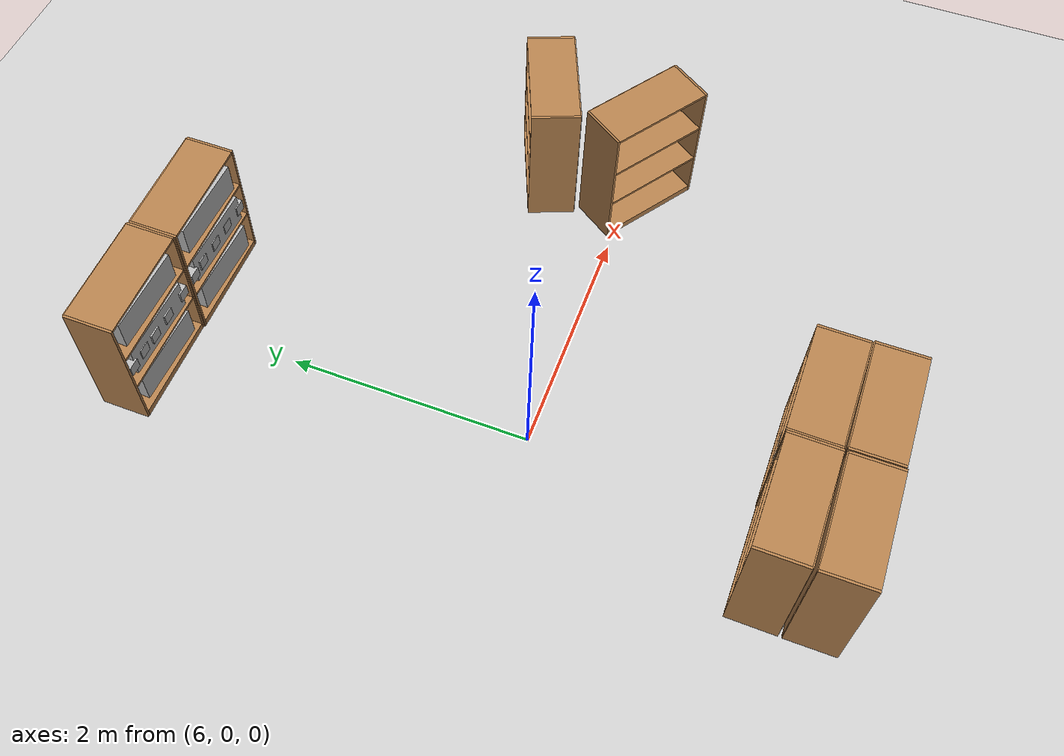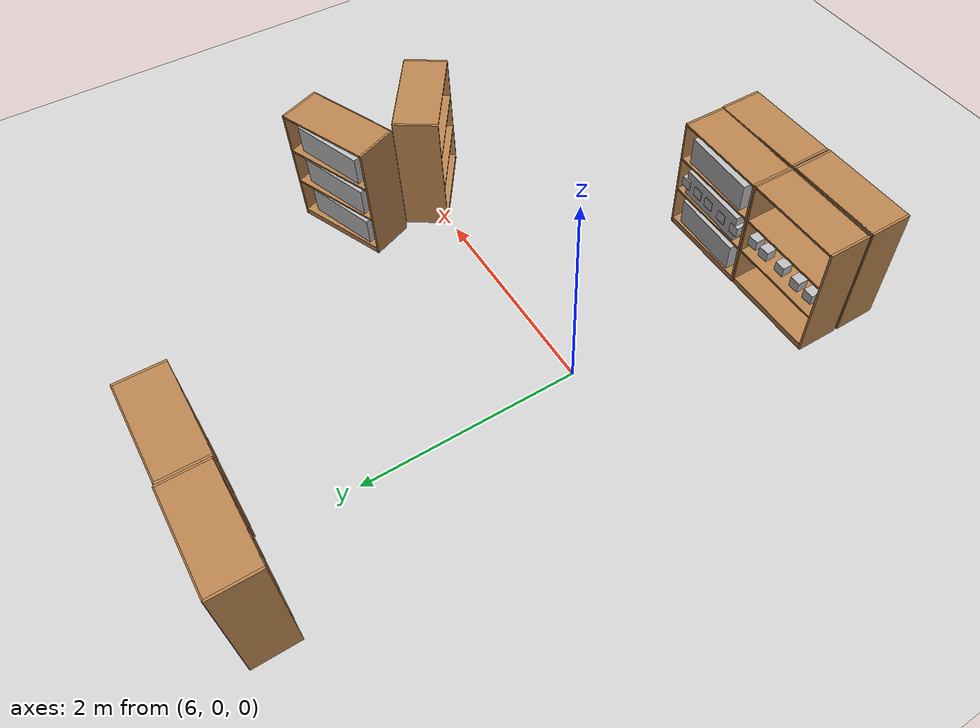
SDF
<sdf version="1.7">
 <world name="default">
  <model name="ground_plane">
   <static>1</static>
   <link name="link">
    <collision name="collision">
     <geometry><plane><normal>0 0 1</normal><size>100 100</size></plane></geometry>
     <surface><friction><ode><mu>100</mu><mu2>50</mu2></ode></friction></surface>
    </collision>
    <visual name="visual">
     <cast_shadows>0</cast_shadows>
     <geometry><plane><normal>0 0 1</normal><size>100 100</size></plane></geometry>
     <material>
      <script><uri>file://media/materials/scripts/gazebo.material</uri><name>Gazebo/Grey</name></script>
     </material>
    </visual>
   </link>
  </model>
  <model name="bookshelf">
   <static>1</static>
   <link name="link">
    <inertial><mass>1</mass></inertial>
    <collision name="back">
     <pose>0 0.005 0.6 0 -0 0</pose>
     <geometry><box><size>0.9 0.01 1.2</size></box></geometry>
    </collision>
    <visual name="visual1">
     <pose>0 0.005 0.6 0 -0 0</pose>
     <geometry><box><size>0.9 0.01 1.2</size></box></geometry>
     <material>
      <script><uri>file://media/materials/scripts/gazebo.material</uri><name>Gazebo/Wood</name></script>
     </material>
    </visual>
    <collision name="left_side">
     <pose>0.45 -0.195 0.6 0 -0 0</pose>
     <geometry><box><size>0.02 0.4 1.2</size></box></geometry>
    </collision>
    <visual name="visual2">
     <pose>0.45 -0.195 0.6 0 -0 0</pose>
     <geometry><box><size>0.02 0.4 1.2</size></box></geometry>
     <material>
      <script><uri>file://media/materials/scripts/gazebo.material</uri><name>Gazebo/Wood</name></script>
     </material>
    </visual>
    <collision name="right_side">
     <pose>-0.45 -0.195 0.6 0 -0 0</pose>
     <geometry><box><size>0.02 0.4 1.2</size></box></geometry>
    </collision>
    <visual name="visual3">
     <pose>-0.45 -0.195 0.6 0 -0 0</pose>
     <geometry><box><size>0.02 0.4 1.2</size></box></geometry>
     <material>
      <script><uri>file://media/materials/scripts/gazebo.material</uri><name>Gazebo/Wood</name></script>
     </material>
    </visual>
    <collision name="bottom">
     <pose>0 -0.195 0.03 0 -0 0</pose>
     <geometry><box><size>0.88 0.4 0.06</size></box></geometry>
    </collision>
    <visual name="visual4">
     <pose>0 -0.195 0.03 0 -0 0</pose>
     <geometry><box><size>0.88 0.4 0.06</size></box></geometry>
     <material>
      <script><uri>file://media/materials/scripts/gazebo.material</uri><name>Gazebo/Wood</name></script>
     </material>
    </visual>
    <collision name="top">
     <pose>0 -0.195 1.19 0 -0 0</pose>
     <geometry><box><size>0.88 0.4 0.02</size></box></geometry>
    </collision>
    <visual name="visual5">
     <pose>0 -0.195 1.19 0 -0 0</pose>
     <geometry><box><size>0.88 0.4 0.02</size></box></geometry>
     <material>
      <script><uri>file://media/materials/scripts/gazebo.material</uri><name>Gazebo/Wood</name></script>
     </material>
    </visual>
    <collision name="low_shelf">
     <pose>0 -0.195 0.43 0 -0 0</pose>
     <geometry><box><size>0.88 0.4 0.02</size></box></geometry>
    </collision>
    <visual name="visual6">
     <pose>0 -0.195 0.43 0 -0 0</pose>
     <geometry><box><size>0.88 0.4 0.02</size></box></geometry>
     <material>
      <script><uri>file://media/materials/scripts/gazebo.material</uri><name>Gazebo/Wood</name></script>
     </material>
    </visual>
    <collision name="high_shelf">
     <pose>0 -0.195 0.8 0 -0 0</pose>
     <geometry><box><size>0.88 0.4 0.02</size></box></geometry>
    </collision>
    <visual name="visual7">
     <pose>0 -0.195 0.8 0 -0 0</pose>
     <geometry><box><size>0.88 0.4 0.02</size></box></geometry>
     <material>
      <script><uri>file://media/materials/scripts/gazebo.material</uri><name>Gazebo/Wood</name></script>
     </material>
    </visual>
   </link>
   <pose>6.50028 3.23644 0.012624 0 -0 0</pose>
  </model>
  <model name="bookshelf_clone">
   <static>1</static>
   <link name="link">
    <inertial><mass>1</mass></inertial>
    <collision name="back">
     <pose>0 0.005 0.6 0 -0 0</pose>
     <geometry><box><size>0.9 0.01 1.2</size></box></geometry>
    </collision>
    <visual name="visual1">
     <pose>0 0.005 0.6 0 -0 0</pose>
     <geometry><box><size>0.9 0.01 1.2</size></box></geometry>
     <material>
      <script><uri>file://media/materials/scripts/gazebo.material</uri><name>Gazebo/Wood</name></script>
     </material>
    </visual>
    <collision name="left_side">
     <pose>0.45 -0.195 0.6 0 -0 0</pose>
     <geometry><box><size>0.02 0.4 1.2</size></box></geometry>
    </collision>
    <visual name="visual2">
     <pose>0.45 -0.195 0.6 0 -0 0</pose>
     <geometry><box><size>0.02 0.4 1.2</size></box></geometry>
     <material>
      <script><uri>file://media/materials/scripts/gazebo.material</uri><name>Gazebo/Wood</name></script>
     </material>
    </visual>
    <collision name="right_side">
     <pose>-0.45 -0.195 0.6 0 -0 0</pose>
     <geometry><box><size>0.02 0.4 1.2</size></box></geometry>
    </collision>
    <visual name="visual3">
     <pose>-0.45 -0.195 0.6 0 -0 0</pose>
     <geometry><box><size>0.02 0.4 1.2</size></box></geometry>
     <material>
      <script><uri>file://media/materials/scripts/gazebo.material</uri><name>Gazebo/Wood</name></script>
     </material>
    </visual>
    <collision name="bottom">
     <pose>0 -0.195 0.03 0 -0 0</pose>
     <geometry><box><size>0.88 0.4 0.06</size></box></geometry>
    </collision>
    <visual name="visual4">
     <pose>0 -0.195 0.03 0 -0 0</pose>
     <geometry><box><size>0.88 0.4 0.06</size></box></geometry>
     <material>
      <script><uri>file://media/materials/scripts/gazebo.material</uri><name>Gazebo/Wood</name></script>
     </material>
    </visual>
    <collision name="top">
     <pose>0 -0.195 1.19 0 -0 0</pose>
     <geometry><box><size>0.88 0.4 0.02</size></box></geometry>
    </collision>
    <visual name="visual5">
     <pose>0 -0.195 1.19 0 -0 0</pose>
     <geometry><box><size>0.88 0.4 0.02</size></box></geometry>
     <material>
      <script><uri>file://media/materials/scripts/gazebo.material</uri><name>Gazebo/Wood</name></script>
     </material>
    </visual>
    <collision name="low_shelf">
     <pose>0 -0.195 0.43 0 -0 0</pose>
     <geometry><box><size>0.88 0.4 0.02</size></box></geometry>
    </collision>
    <visual name="visual6">
     <pose>0 -0.195 0.43 0 -0 0</pose>
     <geometry><box><size>0.88 0.4 0.02</size></box></geometry>
     <material>
      <script><uri>file://media/materials/scripts/gazebo.material</uri><name>Gazebo/Wood</name></script>
     </material>
    </visual>
    <collision name="high_shelf">
     <pose>0 -0.195 0.8 0 -0 0</pose>
     <geometry><box><size>0.88 0.4 0.02</size></box></geometry>
    </collision>
    <visual name="visual7">
     <pose>0 -0.195 0.8 0 -0 0</pose>
     <geometry><box><size>0.88 0.4 0.02</size></box></geometry>
     <material>
      <script><uri>file://media/materials/scripts/gazebo.material</uri><name>Gazebo/Wood</name></script>
     </material>
    </visual>
   </link>
   <pose>5.58313 3.24733 0.012624 0 -0 0</pose>
  </model>
  <model name="bookshelf_clone_0_clone_1_clone">
   <static>1</static>
   <link name="link">
    <inertial><mass>1</mass></inertial>
    <collision name="back">
     <pose>0 0.005 0.6 0 -0 0</pose>
     <geometry><box><size>0.9 0.01 1.2</size></box></geometry>
    </collision>
    <visual name="visual1">
     <pose>0 0.005 0.6 0 -0 0</pose>
     <geometry><box><size>0.9 0.01 1.2</size></box></geometry>
     <material>
      <script><uri>file://media/materials/scripts/gazebo.material</uri><name>Gazebo/Wood</name></script>
     </material>
    </visual>
    <collision name="left_side">
     <pose>0.45 -0.195 0.6 0 -0 0</pose>
     <geometry><box><size>0.02 0.4 1.2</size></box></geometry>
    </collision>
    <visual name="visual2">
     <pose>0.45 -0.195 0.6 0 -0 0</pose>
     <geometry><box><size>0.02 0.4 1.2</size></box></geometry>
     <material>
      <script><uri>file://media/materials/scripts/gazebo.material</uri><name>Gazebo/Wood</name></script>
     </material>
    </visual>
    <collision name="right_side">
     <pose>-0.45 -0.195 0.6 0 -0 0</pose>
     <geometry><box><size>0.02 0.4 1.2</size></box></geometry>
    </collision>
    <visual name="visual3">
     <pose>-0.45 -0.195 0.6 0 -0 0</pose>
     <geometry><box><size>0.02 0.4 1.2</size></box></geometry>
     <material>
      <script><uri>file://media/materials/scripts/gazebo.material</uri><name>Gazebo/Wood</name></script>
     </material>
    </visual>
    <collision name="bottom">
     <pose>0 -0.195 0.03 0 -0 0</pose>
     <geometry><box><size>0.88 0.4 0.06</size></box></geometry>
    </collision>
    <visual name="visual4">
     <pose>0 -0.195 0.03 0 -0 0</pose>
     <geometry><box><size>0.88 0.4 0.06</size></box></geometry>
     <material>
      <script><uri>file://media/materials/scripts/gazebo.material</uri><name>Gazebo/Wood</name></script>
     </material>
    </visual>
    <collision name="top">
     <pose>0 -0.195 1.19 0 -0 0</pose>
     <geometry><box><size>0.88 0.4 0.02</size></box></geometry>
    </collision>
    <visual name="visual5">
     <pose>0 -0.195 1.19 0 -0 0</pose>
     <geometry><box><size>0.88 0.4 0.02</size></box></geometry>
     <material>
      <script><uri>file://media/materials/scripts/gazebo.material</uri><name>Gazebo/Wood</name></script>
     </material>
    </visual>
    <collision name="low_shelf">
     <pose>0 -0.195 0.43 0 -0 0</pose>
     <geometry><box><size>0.88 0.4 0.02</size></box></geometry>
    </collision>
    <visual name="visual6">
     <pose>0 -0.195 0.43 0 -0 0</pose>
     <geometry><box><size>0.88 0.4 0.02</size></box></geometry>
     <material>
      <script><uri>file://media/materials/scripts/gazebo.material</uri><name>Gazebo/Wood</name></script>
     </material>
    </visual>
    <collision name="high_shelf">
     <pose>0 -0.195 0.8 0 -0 0</pose>
     <geometry><box><size>0.88 0.4 0.02</size></box></geometry>
    </collision>
    <visual name="visual7">
     <pose>0 -0.195 0.8 0 -0 0</pose>
     <geometry><box><size>0.88 0.4 0.02</size></box></geometry>
     <material>
      <script><uri>file://media/materials/scripts/gazebo.material</uri><name>Gazebo/Wood</name></script>
     </material>
    </visual>
   </link>
   <pose>5.60363 -2.22371 0.012624 0 -0 0</pose>
  </model>
  <model name="bookshelf_clone_0_clone_1_clone_0">
   <static>1</static>
   <link name="link">
    <inertial><mass>1</mass></inertial>
    <collision name="back">
     <pose>0 0.005 0.6 0 -0 0</pose>
     <geometry><box><size>0.9 0.01 1.2</size></box></geometry>
    </collision>
    <visual name="visual1">
     <pose>0 0.005 0.6 0 -0 0</pose>
     <geometry><box><size>0.9 0.01 1.2</size></box></geometry>
     <material>
      <script><uri>file://media/materials/scripts/gazebo.material</uri><name>Gazebo/Wood</name></script>
     </material>
    </visual>
    <collision name="left_side">
     <pose>0.45 -0.195 0.6 0 -0 0</pose>
     <geometry><box><size>0.02 0.4 1.2</size></box></geometry>
    </collision>
    <visual name="visual2">
     <pose>0.45 -0.195 0.6 0 -0 0</pose>
     <geometry><box><size>0.02 0.4 1.2</size></box></geometry>
     <material>
      <script><uri>file://media/materials/scripts/gazebo.material</uri><name>Gazebo/Wood</name></script>
     </material>
    </visual>
    <collision name="right_side">
     <pose>-0.45 -0.195 0.6 0 -0 0</pose>
     <geometry><box><size>0.02 0.4 1.2</size></box></geometry>
    </collision>
    <visual name="visual3">
     <pose>-0.45 -0.195 0.6 0 -0 0</pose>
     <geometry><box><size>0.02 0.4 1.2</size></box></geometry>
     <material>
      <script><uri>file://media/materials/scripts/gazebo.material</uri><name>Gazebo/Wood</name></script>
     </material>
    </visual>
    <collision name="bottom">
     <pose>0 -0.195 0.03 0 -0 0</pose>
     <geometry><box><size>0.88 0.4 0.06</size></box></geometry>
    </collision>
    <visual name="visual4">
     <pose>0 -0.195 0.03 0 -0 0</pose>
     <geometry><box><size>0.88 0.4 0.06</size></box></geometry>
     <material>
      <script><uri>file://media/materials/scripts/gazebo.material</uri><name>Gazebo/Wood</name></script>
     </material>
    </visual>
    <collision name="top">
     <pose>0 -0.195 1.19 0 -0 0</pose>
     <geometry><box><size>0.88 0.4 0.02</size></box></geometry>
    </collision>
    <visual name="visual5">
     <pose>0 -0.195 1.19 0 -0 0</pose>
     <geometry><box><size>0.88 0.4 0.02</size></box></geometry>
     <material>
      <script><uri>file://media/materials/scripts/gazebo.material</uri><name>Gazebo/Wood</name></script>
     </material>
    </visual>
    <collision name="low_shelf">
     <pose>0 -0.195 0.43 0 -0 0</pose>
     <geometry><box><size>0.88 0.4 0.02</size></box></geometry>
    </collision>
    <visual name="visual6">
     <pose>0 -0.195 0.43 0 -0 0</pose>
     <geometry><box><size>0.88 0.4 0.02</size></box></geometry>
     <material>
      <script><uri>file://media/materials/scripts/gazebo.material</uri><name>Gazebo/Wood</name></script>
     </material>
    </visual>
    <collision name="high_shelf">
     <pose>0 -0.195 0.8 0 -0 0</pose>
     <geometry><box><size>0.88 0.4 0.02</size></box></geometry>
    </collision>
    <visual name="visual7">
     <pose>0 -0.195 0.8 0 -0 0</pose>
     <geometry><box><size>0.88 0.4 0.02</size></box></geometry>
     <material>
      <script><uri>file://media/materials/scripts/gazebo.material</uri><name>Gazebo/Wood</name></script>
     </material>
    </visual>
   </link>
   <pose>6.53127 -2.2171 0.012624 0 -0 0</pose>
  </model>
  <model name="bookshelf_clone_clone_clone_1_clone_0_clone">
   <static>1</static>
   <link name="link">
    <inertial><mass>1</mass></inertial>
    <collision name="back">
     <pose>0 0.005 0.6 0 -0 0</pose>
     <geometry><box><size>0.9 0.01 1.2</size></box></geometry>
    </collision>
    <visual name="visual1">
     <pose>0 0.005 0.6 0 -0 0</pose>
     <geometry><box><size>0.9 0.01 1.2</size></box></geometry>
     <material>
      <script><uri>file://media/materials/scripts/gazebo.material</uri><name>Gazebo/Wood</name></script>
     </material>
    </visual>
    <collision name="left_side">
     <pose>0.45 -0.195 0.6 0 -0 0</pose>
     <geometry><box><size>0.02 0.4 1.2</size></box></geometry>
    </collision>
    <visual name="visual2">
     <pose>0.45 -0.195 0.6 0 -0 0</pose>
     <geometry><box><size>0.02 0.4 1.2</size></box></geometry>
     <material>
      <script><uri>file://media/materials/scripts/gazebo.material</uri><name>Gazebo/Wood</name></script>
     </material>
    </visual>
    <collision name="right_side">
     <pose>-0.45 -0.195 0.6 0 -0 0</pose>
     <geometry><box><size>0.02 0.4 1.2</size></box></geometry>
    </collision>
    <visual name="visual3">
     <pose>-0.45 -0.195 0.6 0 -0 0</pose>
     <geometry><box><size>0.02 0.4 1.2</size></box></geometry>
     <material>
      <script><uri>file://media/materials/scripts/gazebo.material</uri><name>Gazebo/Wood</name></script>
     </material>
    </visual>
    <collision name="bottom">
     <pose>0 -0.195 0.03 0 -0 0</pose>
     <geometry><box><size>0.88 0.4 0.06</size></box></geometry>
    </collision>
    <visual name="visual4">
     <pose>0 -0.195 0.03 0 -0 0</pose>
     <geometry><box><size>0.88 0.4 0.06</size></box></geometry>
     <material>
      <script><uri>file://media/materials/scripts/gazebo.material</uri><name>Gazebo/Wood</name></script>
     </material>
    </visual>
    <collision name="top">
     <pose>0 -0.195 1.19 0 -0 0</pose>
     <geometry><box><size>0.88 0.4 0.02</size></box></geometry>
    </collision>
    <visual name="visual5">
     <pose>0 -0.195 1.19 0 -0 0</pose>
     <geometry><box><size>0.88 0.4 0.02</size></box></geometry>
     <material>
      <script><uri>file://media/materials/scripts/gazebo.material</uri><name>Gazebo/Wood</name></script>
     </material>
    </visual>
    <collision name="low_shelf">
     <pose>0 -0.195 0.43 0 -0 0</pose>
     <geometry><box><size>0.88 0.4 0.02</size></box></geometry>
    </collision>
    <visual name="visual6">
     <pose>0 -0.195 0.43 0 -0 0</pose>
     <geometry><box><size>0.88 0.4 0.02</size></box></geometry>
     <material>
      <script><uri>file://media/materials/scripts/gazebo.material</uri><name>Gazebo/Wood</name></script>
     </material>
    </visual>
    <collision name="high_shelf">
     <pose>0 -0.195 0.8 0 -0 0</pose>
     <geometry><box><size>0.88 0.4 0.02</size></box></geometry>
    </collision>
    <visual name="visual7">
     <pose>0 -0.195 0.8 0 -0 0</pose>
     <geometry><box><size>0.88 0.4 0.02</size></box></geometry>
     <material>
      <script><uri>file://media/materials/scripts/gazebo.material</uri><name>Gazebo/Wood</name></script>
     </material>
    </visual>
   </link>
   <pose>5.60608 -2.18659 0.012624 0 -0 3.13078</pose>
  </model>
  <model name="bookshelf_clone_clone_clone_1_clone_0_clone_0">
   <static>1</static>
   <link name="link">
    <inertial><mass>1</mass></inertial>
    <collision name="back">
     <pose>0 0.005 0.6 0 -0 0</pose>
     <geometry><box><size>0.9 0.01 1.2</size></box></geometry>
    </collision>
    <visual name="visual1">
     <pose>0 0.005 0.6 0 -0 0</pose>
     <geometry><box><size>0.9 0.01 1.2</size></box></geometry>
     <material>
      <script><uri>file://media/materials/scripts/gazebo.material</uri><name>Gazebo/Wood</name></script>
     </material>
    </visual>
    <collision name="left_side">
     <pose>0.45 -0.195 0.6 0 -0 0</pose>
     <geometry><box><size>0.02 0.4 1.2</size></box></geometry>
    </collision>
    <visual name="visual2">
     <pose>0.45 -0.195 0.6 0 -0 0</pose>
     <geometry><box><size>0.02 0.4 1.2</size></box></geometry>
     <material>
      <script><uri>file://media/materials/scripts/gazebo.material</uri><name>Gazebo/Wood</name></script>
     </material>
    </visual>
    <collision name="right_side">
     <pose>-0.45 -0.195 0.6 0 -0 0</pose>
     <geometry><box><size>0.02 0.4 1.2</size></box></geometry>
    </collision>
    <visual name="visual3">
     <pose>-0.45 -0.195 0.6 0 -0 0</pose>
     <geometry><box><size>0.02 0.4 1.2</size></box></geometry>
     <material>
      <script><uri>file://media/materials/scripts/gazebo.material</uri><name>Gazebo/Wood</name></script>
     </material>
    </visual>
    <collision name="bottom">
     <pose>0 -0.195 0.03 0 -0 0</pose>
     <geometry><box><size>0.88 0.4 0.06</size></box></geometry>
    </collision>
    <visual name="visual4">
     <pose>0 -0.195 0.03 0 -0 0</pose>
     <geometry><box><size>0.88 0.4 0.06</size></box></geometry>
     <material>
      <script><uri>file://media/materials/scripts/gazebo.material</uri><name>Gazebo/Wood</name></script>
     </material>
    </visual>
    <collision name="top">
     <pose>0 -0.195 1.19 0 -0 0</pose>
     <geometry><box><size>0.88 0.4 0.02</size></box></geometry>
    </collision>
    <visual name="visual5">
     <pose>0 -0.195 1.19 0 -0 0</pose>
     <geometry><box><size>0.88 0.4 0.02</size></box></geometry>
     <material>
      <script><uri>file://media/materials/scripts/gazebo.material</uri><name>Gazebo/Wood</name></script>
     </material>
    </visual>
    <collision name="low_shelf">
     <pose>0 -0.195 0.43 0 -0 0</pose>
     <geometry><box><size>0.88 0.4 0.02</size></box></geometry>
    </collision>
    <visual name="visual6">
     <pose>0 -0.195 0.43 0 -0 0</pose>
     <geometry><box><size>0.88 0.4 0.02</size></box></geometry>
     <material>
      <script><uri>file://media/materials/scripts/gazebo.material</uri><name>Gazebo/Wood</name></script>
     </material>
    </visual>
    <collision name="high_shelf">
     <pose>0 -0.195 0.8 0 -0 0</pose>
     <geometry><box><size>0.88 0.4 0.02</size></box></geometry>
    </collision>
    <visual name="visual7">
     <pose>0 -0.195 0.8 0 -0 0</pose>
     <geometry><box><size>0.88 0.4 0.02</size></box></geometry>
     <material>
      <script><uri>file://media/materials/scripts/gazebo.material</uri><name>Gazebo/Wood</name></script>
     </material>
    </visual>
   </link>
   <pose>6.52158 -2.19143 0.012624 0 -0 3.13078</pose>
  </model>
  <model name="bookshelf_clone_clone_clone_1_clone_0_clone_1_clone_clone">
   <static>1</static>
   <link name="link">
    <inertial><mass>1</mass></inertial>
    <collision name="back">
     <pose>0 0.005 0.6 0 -0 0</pose>
     <geometry><box><size>0.9 0.01 1.2</size></box></geometry>
    </collision>
    <visual name="visual1">
     <pose>0 0.005 0.6 0 -0 0</pose>
     <geometry><box><size>0.9 0.01 1.2</size></box></geometry>
     <material>
      <script><uri>file://media/materials/scripts/gazebo.material</uri><name>Gazebo/Wood</name></script>
     </material>
    </visual>
    <collision name="left_side">
     <pose>0.45 -0.195 0.6 0 -0 0</pose>
     <geometry><box><size>0.02 0.4 1.2</size></box></geometry>
    </collision>
    <visual name="visual2">
     <pose>0.45 -0.195 0.6 0 -0 0</pose>
     <geometry><box><size>0.02 0.4 1.2</size></box></geometry>
     <material>
      <script><uri>file://media/materials/scripts/gazebo.material</uri><name>Gazebo/Wood</name></script>
     </material>
    </visual>
    <collision name="right_side">
     <pose>-0.45 -0.195 0.6 0 -0 0</pose>
     <geometry><box><size>0.02 0.4 1.2</size></box></geometry>
    </collision>
    <visual name="visual3">
     <pose>-0.45 -0.195 0.6 0 -0 0</pose>
     <geometry><box><size>0.02 0.4 1.2</size></box></geometry>
     <material>
      <script><uri>file://media/materials/scripts/gazebo.material</uri><name>Gazebo/Wood</name></script>
     </material>
    </visual>
    <collision name="bottom">
     <pose>0 -0.195 0.03 0 -0 0</pose>
     <geometry><box><size>0.88 0.4 0.06</size></box></geometry>
    </collision>
    <visual name="visual4">
     <pose>0 -0.195 0.03 0 -0 0</pose>
     <geometry><box><size>0.88 0.4 0.06</size></box></geometry>
     <material>
      <script><uri>file://media/materials/scripts/gazebo.material</uri><name>Gazebo/Wood</name></script>
     </material>
    </visual>
    <collision name="top">
     <pose>0 -0.195 1.19 0 -0 0</pose>
     <geometry><box><size>0.88 0.4 0.02</size></box></geometry>
    </collision>
    <visual name="visual5">
     <pose>0 -0.195 1.19 0 -0 0</pose>
     <geometry><box><size>0.88 0.4 0.02</size></box></geometry>
     <material>
      <script><uri>file://media/materials/scripts/gazebo.material</uri><name>Gazebo/Wood</name></script>
     </material>
    </visual>
    <collision name="low_shelf">
     <pose>0 -0.195 0.43 0 -0 0</pose>
     <geometry><box><size>0.88 0.4 0.02</size></box></geometry>
    </collision>
    <visual name="visual6">
     <pose>0 -0.195 0.43 0 -0 0</pose>
     <geometry><box><size>0.88 0.4 0.02</size></box></geometry>
     <material>
      <script><uri>file://media/materials/scripts/gazebo.material</uri><name>Gazebo/Wood</name></script>
     </material>
    </visual>
    <collision name="high_shelf">
     <pose>0 -0.195 0.8 0 -0 0</pose>
     <geometry><box><size>0.88 0.4 0.02</size></box></geometry>
    </collision>
    <visual name="visual7">
     <pose>0 -0.195 0.8 0 -0 0</pose>
     <geometry><box><size>0.88 0.4 0.02</size></box></geometry>
     <material>
      <script><uri>file://media/materials/scripts/gazebo.material</uri><name>Gazebo/Wood</name></script>
     </material>
    </visual>
   </link>
   <pose>8.69753 0.106642 0.029212 0 0 -0.598378</pose>
  </model>
  <model name="bookshelf_clone_clone_clone_1_clone_0_clone_3_clone_clone">
   <static>1</static>
   <link name="link">
    <inertial><mass>1</mass></inertial>
    <collision name="back">
     <pose>0 0.005 0.6 0 -0 0</pose>
     <geometry><box><size>0.9 0.01 1.2</size></box></geometry>
    </collision>
    <visual name="visual1">
     <pose>0 0.005 0.6 0 -0 0</pose>
     <geometry><box><size>0.9 0.01 1.2</size></box></geometry>
     <material>
      <script><uri>file://media/materials/scripts/gazebo.material</uri><name>Gazebo/Wood</name></script>
     </material>
    </visual>
    <collision name="left_side">
     <pose>0.45 -0.195 0.6 0 -0 0</pose>
     <geometry><box><size>0.02 0.4 1.2</size></box></geometry>
    </collision>
    <visual name="visual2">
     <pose>0.45 -0.195 0.6 0 -0 0</pose>
     <geometry><box><size>0.02 0.4 1.2</size></box></geometry>
     <material>
      <script><uri>file://media/materials/scripts/gazebo.material</uri><name>Gazebo/Wood</name></script>
     </material>
    </visual>
    <collision name="right_side">
     <pose>-0.45 -0.195 0.6 0 -0 0</pose>
     <geometry><box><size>0.02 0.4 1.2</size></box></geometry>
    </collision>
    <visual name="visual3">
     <pose>-0.45 -0.195 0.6 0 -0 0</pose>
     <geometry><box><size>0.02 0.4 1.2</size></box></geometry>
     <material>
      <script><uri>file://media/materials/scripts/gazebo.material</uri><name>Gazebo/Wood</name></script>
     </material>
    </visual>
    <collision name="bottom">
     <pose>0 -0.195 0.03 0 -0 0</pose>
     <geometry><box><size>0.88 0.4 0.06</size></box></geometry>
    </collision>
    <visual name="visual4">
     <pose>0 -0.195 0.03 0 -0 0</pose>
     <geometry><box><size>0.88 0.4 0.06</size></box></geometry>
     <material>
      <script><uri>file://media/materials/scripts/gazebo.material</uri><name>Gazebo/Wood</name></script>
     </material>
    </visual>
    <collision name="top">
     <pose>0 -0.195 1.19 0 -0 0</pose>
     <geometry><box><size>0.88 0.4 0.02</size></box></geometry>
    </collision>
    <visual name="visual5">
     <pose>0 -0.195 1.19 0 -0 0</pose>
     <geometry><box><size>0.88 0.4 0.02</size></box></geometry>
     <material>
      <script><uri>file://media/materials/scripts/gazebo.material</uri><name>Gazebo/Wood</name></script>
     </material>
    </visual>
    <collision name="low_shelf">
     <pose>0 -0.195 0.43 0 -0 0</pose>
     <geometry><box><size>0.88 0.4 0.02</size></box></geometry>
    </collision>
    <visual name="visual6">
     <pose>0 -0.195 0.43 0 -0 0</pose>
     <geometry><box><size>0.88 0.4 0.02</size></box></geometry>
     <material>
      <script><uri>file://media/materials/scripts/gazebo.material</uri><name>Gazebo/Wood</name></script>
     </material>
    </visual>
    <collision name="high_shelf">
     <pose>0 -0.195 0.8 0 -0 0</pose>
     <geometry><box><size>0.88 0.4 0.02</size></box></geometry>
    </collision>
    <visual name="visual7">
     <pose>0 -0.195 0.8 0 -0 0</pose>
     <geometry><box><size>0.88 0.4 0.02</size></box></geometry>
     <material>
      <script><uri>file://media/materials/scripts/gazebo.material</uri><name>Gazebo/Wood</name></script>
     </material>
    </visual>
   </link>
   <pose>8.68842 0.576564 0.012624 0 0 -2.75538</pose>
  </model>
  <model name="book1.xacro_clone_0">
   <link name="base_footprint">
    <inertial>
     <pose>1 1 1.5 0 -0 0</pose>
     <mass>6</mass>
     <inertia><ixx>0.7503</ixx><ixy>0</ixy><ixz>0</ixz><iyy>0.7503</iyy><iyz>0</iyz><izz>0.003</izz></inertia>
    </inertial>
    <collision name="base_footprint_fixed_joint_lump__base_link_collision">
     <pose>1 1 1 0 -0 0</pose>
     <geometry><box><size>0.7 0.2 0.27</size></box></geometry>
    </collision>
    <collision name="base_footprint_fixed_joint_lump__book_link_2_collision_1">
     <pose>1 1 1.375 0 -0 0</pose>
     <geometry><box><size>0.7 0.2 0.27</size></box></geometry>
    </collision>
    <collision name="base_footprint_fixed_joint_lump__book_link_3_collision_2">
     <pose>1 1 1.75 0 -0 0</pose>
     <geometry><box><size>0.7 0.2 0.27</size></box></geometry>
    </collision>
    <visual name="base_footprint_fixed_joint_lump__base_link_visual">
     <pose>1 1 1 0 -0 0</pose>
     <geometry><box><size>0.7 0.2 0.27</size></box></geometry>
    </visual>
    <visual name="base_footprint_fixed_joint_lump__book_link_2_visual_1">
     <pose>1 1 1.375 0 -0 0</pose>
     <geometry><box><size>0.7 0.2 0.27</size></box></geometry>
    </visual>
    <visual name="base_footprint_fixed_joint_lump__book_link_3_visual_2">
     <pose>1 1 1.75 0 -0 0</pose>
     <geometry><box><size>0.7 0.2 0.27</size></box></geometry>
    </visual>
   </link>
   <frame name="book_joint_2" attached_to="base_link"><pose>0 0 0.375 0 -0 0</pose></frame>
   <frame name="book_link_2" attached_to="book_joint_2"/>
   <frame name="book_joint_3" attached_to="base_link"><pose>0 0 0.75 0 -0 0</pose></frame>
   <frame name="book_link_3" attached_to="book_joint_3"/>
   <frame name="base_joint" attached_to="base_footprint"><pose>1 1 1 0 -0 0</pose></frame>
   <frame name="base_link" attached_to="base_joint"/>
   <pose>4.57309 2.01917 -0.787394 0 -1.3e-05 -0.030722</pose>
  </model>
  <model name="book1.xacro_clone_1">
   <link name="base_footprint">
    <inertial>
     <pose>1 1 1.5 0 -0 0</pose>
     <mass>6</mass>
     <inertia><ixx>0.7503</ixx><ixy>0</ixy><ixz>0</ixz><iyy>0.7503</iyy><iyz>0</iyz><izz>0.003</izz></inertia>
    </inertial>
    <collision name="base_footprint_fixed_joint_lump__base_link_collision">
     <pose>1 1 1 0 -0 0</pose>
     <geometry><box><size>0.7 0.2 0.27</size></box></geometry>
    </collision>
    <collision name="base_footprint_fixed_joint_lump__book_link_2_collision_1">
     <pose>1 1 1.375 0 -0 0</pose>
     <geometry><box><size>0.7 0.2 0.27</size></box></geometry>
    </collision>
    <collision name="base_footprint_fixed_joint_lump__book_link_3_collision_2">
     <pose>1 1 1.75 0 -0 0</pose>
     <geometry><box><size>0.7 0.2 0.27</size></box></geometry>
    </collision>
    <visual name="base_footprint_fixed_joint_lump__base_link_visual">
     <pose>1 1 1 0 -0 0</pose>
     <geometry><box><size>0.7 0.2 0.27</size></box></geometry>
    </visual>
    <visual name="base_footprint_fixed_joint_lump__book_link_2_visual_1">
     <pose>1 1 1.375 0 -0 0</pose>
     <geometry><box><size>0.7 0.2 0.27</size></box></geometry>
    </visual>
    <visual name="base_footprint_fixed_joint_lump__book_link_3_visual_2">
     <pose>1 1 1.75 0 -0 0</pose>
     <geometry><box><size>0.7 0.2 0.27</size></box></geometry>
    </visual>
   </link>
   <frame name="book_joint_2" attached_to="base_link"><pose>0 0 0.375 0 -0 0</pose></frame>
   <frame name="book_link_2" attached_to="book_joint_2"/>
   <frame name="book_joint_3" attached_to="base_link"><pose>0 0 0.75 0 -0 0</pose></frame>
   <frame name="book_link_3" attached_to="book_joint_3"/>
   <frame name="base_joint" attached_to="base_footprint"><pose>1 1 1 0 -0 0</pose></frame>
   <frame name="base_link" attached_to="base_joint"/>
   <pose>5.50245 2.00171 -0.787394 0 -1.3e-05 -0.030722</pose>
  </model>
  <model name="book1.xacro_clone_7">
   <link name="base_footprint">
    <inertial>
     <pose>1 1 1.5 0 -0 0</pose>
     <mass>6</mass>
     <inertia><ixx>0.7503</ixx><ixy>0</ixy><ixz>0</ixz><iyy>0.7503</iyy><iyz>0</iyz><izz>0.003</izz></inertia>
    </inertial>
    <collision name="base_footprint_fixed_joint_lump__base_link_collision">
     <pose>1 1 1 0 -0 0</pose>
     <geometry><box><size>0.7 0.2 0.27</size></box></geometry>
    </collision>
    <collision name="base_footprint_fixed_joint_lump__book_link_2_collision_1">
     <pose>1 1 1.375 0 -0 0</pose>
     <geometry><box><size>0.7 0.2 0.27</size></box></geometry>
    </collision>
    <collision name="base_footprint_fixed_joint_lump__book_link_3_collision_2">
     <pose>1 1 1.75 0 -0 0</pose>
     <geometry><box><size>0.7 0.2 0.27</size></box></geometry>
    </collision>
    <visual name="base_footprint_fixed_joint_lump__base_link_visual">
     <pose>1 1 1 0 -0 0</pose>
     <geometry><box><size>0.7 0.2 0.27</size></box></geometry>
    </visual>
    <visual name="base_footprint_fixed_joint_lump__book_link_2_visual_1">
     <pose>1 1 1.375 0 -0 0</pose>
     <geometry><box><size>0.7 0.2 0.27</size></box></geometry>
    </visual>
    <visual name="base_footprint_fixed_joint_lump__book_link_3_visual_2">
     <pose>1 1 1.75 0 -0 0</pose>
     <geometry><box><size>0.7 0.2 0.27</size></box></geometry>
    </visual>
   </link>
   <frame name="book_joint_2" attached_to="base_link"><pose>0 0 0.375 0 -0 0</pose></frame>
   <frame name="book_link_2" attached_to="book_joint_2"/>
   <frame name="book_joint_3" attached_to="base_link"><pose>0 0 0.75 0 -0 0</pose></frame>
   <frame name="book_link_3" attached_to="book_joint_3"/>
   <frame name="base_joint" attached_to="base_footprint"><pose>1 1 1 0 -0 0</pose></frame>
   <frame name="base_link" attached_to="base_joint"/>
   <pose>5.49889 -2.88453 -0.787367 0 1.3e-05 -0.030721</pose>
  </model>
  <model name="book1.xacro_clone_0_clone_3">
   <link name="base_footprint">
    <inertial>
     <pose>1 1 1.5 0 -0 0</pose>
     <mass>6</mass>
     <inertia><ixx>0.7503</ixx><ixy>0</ixy><ixz>0</ixz><iyy>0.7503</iyy><iyz>0</iyz><izz>0.003</izz></inertia>
    </inertial>
    <collision name="base_footprint_fixed_joint_lump__base_link_collision">
     <pose>1 1 1 0 -0 0</pose>
     <geometry><box><size>0.7 0.2 0.27</size></box></geometry>
    </collision>
    <collision name="base_footprint_fixed_joint_lump__book_link_2_collision_1">
     <pose>1 1 1.375 0 -0 0</pose>
     <geometry><box><size>0.7 0.2 0.27</size></box></geometry>
    </collision>
    <collision name="base_footprint_fixed_joint_lump__book_link_3_collision_2">
     <pose>1 1 1.75 0 -0 0</pose>
     <geometry><box><size>0.7 0.2 0.27</size></box></geometry>
    </collision>
    <visual name="base_footprint_fixed_joint_lump__base_link_visual">
     <pose>1 1 1 0 -0 0</pose>
     <geometry><box><size>0.7 0.2 0.27</size></box></geometry>
    </visual>
    <visual name="base_footprint_fixed_joint_lump__book_link_2_visual_1">
     <pose>1 1 1.375 0 -0 0</pose>
     <geometry><box><size>0.7 0.2 0.27</size></box></geometry>
    </visual>
    <visual name="base_footprint_fixed_joint_lump__book_link_3_visual_2">
     <pose>1 1 1.75 0 -0 0</pose>
     <geometry><box><size>0.7 0.2 0.27</size></box></geometry>
    </visual>
   </link>
   <frame name="book_joint_2" attached_to="base_link"><pose>0 0 0.375 0 -0 0</pose></frame>
   <frame name="book_link_2" attached_to="book_joint_2"/>
   <frame name="book_joint_3" attached_to="base_link"><pose>0 0 0.75 0 -0 0</pose></frame>
   <frame name="book_link_3" attached_to="book_joint_3"/>
   <frame name="base_joint" attached_to="base_footprint"><pose>1 1 1 0 -0 0</pose></frame>
   <frame name="base_link" attached_to="base_joint"/>
   <pose>7.9706 -0.456282 -0.787368 2e-06 1.4e-05 0.334537</pose>
  </model>
  <model name="B4">
   <static>1</static>
   <link name="link">
    <pose>0 0 0.58 1.57 -0 0</pose>
    <inertial>
     <mass>0.1</mass>
     <inertia><ixx>0.00058</ixx><ixy>0</ixy><ixz>0</ixz><iyy>0.00058</iyy><iyz>0</iyz><izz>0.00019</izz></inertia>
    </inertial>
    <collision name="collision"><geometry><box><size>0 0 0</size></box></geometry></collision>
    <visual name="visual">
     <geometry><box><size>0.1 0.1 0.1</size></box></geometry>
     <material>
      <script>
       <uri>model://B4/materials/scripts</uri>
       <uri>model://B4/materials/textures</uri>
       <name>B4/Diffuse</name>
      </script>
     </material>
    </visual>
   </link>
   <pose>5.22726 2.93296 -0 0 -0 0</pose>
  </model>
  <model name="B5">
   <static>1</static>
   <link name="link">
    <pose>0 0 0.58 1.57 -0 0</pose>
    <inertial>
     <mass>0.1</mass>
     <inertia><ixx>0.00058</ixx><ixy>0</ixy><ixz>0</ixz><iyy>0.00058</iyy><iyz>0</iyz><izz>0.00019</izz></inertia>
    </inertial>
    <collision name="collision"><geometry><box><size>0 0 0</size></box></geometry></collision>
    <visual name="visual">
     <geometry><box><size>0.1 0.1 0.1</size></box></geometry>
     <material>
      <script>
       <uri>model://B5/materials/scripts</uri>
       <uri>model://B5/materials/textures</uri>
       <name>B5/Diffuse</name>
      </script>
     </material>
    </visual>
   </link>
   <pose>5.95928 2.91464 -0 0 -0 0</pose>
  </model>
  <model name="B6">
   <static>1</static>
   <link name="link">
    <pose>0 0 0.58 1.57 -0 0</pose>
    <inertial>
     <mass>0.1</mass>
     <inertia><ixx>0.00058</ixx><ixy>0</ixy><ixz>0</ixz><iyy>0.00058</iyy><iyz>0</iyz><izz>0.00019</izz></inertia>
    </inertial>
    <collision name="collision"><geometry><box><size>0 0 0</size></box></geometry></collision>
    <visual name="visual">
     <geometry><box><size>0.1 0.1 0.1</size></box></geometry>
     <material>
      <script>
       <uri>model://B6/materials/scripts</uri>
       <uri>model://B6/materials/textures</uri>
       <name>B6/Diffuse</name>
      </script>
     </material>
    </visual>
   </link>
   <pose>6.14411 2.91156 -0 0 -0 0</pose>
  </model>
  <model name="B7">
   <static>1</static>
   <link name="link">
    <pose>0 0 0.58 1.57 -0 0</pose>
    <inertial>
     <mass>0.1</mass>
     <inertia><ixx>0.00058</ixx><ixy>0</ixy><ixz>0</ixz><iyy>0.00058</iyy><iyz>0</iyz><izz>0.00019</izz></inertia>
    </inertial>
    <collision name="collision"><geometry><box><size>0 0 0</size></box></geometry></collision>
    <visual name="visual">
     <geometry><box><size>0.1 0.1 0.1</size></box></geometry>
     <material>
      <script>
       <uri>model://B7/materials/scripts</uri>
       <uri>model://B7/materials/textures</uri>
       <name>B7/Diffuse</name>
      </script>
     </material>
    </visual>
   </link>
   <pose>6.88077 2.90098 -0 0 -0 0</pose>
  </model>
  <model name="A6">
   <static>1</static>
   <link name="link">
    <pose>0 0 0.58 1.57 -0 0</pose>
    <inertial>
     <mass>0.1</mass>
     <inertia><ixx>0.00058</ixx><ixy>0</ixy><ixz>0</ixz><iyy>0.00058</iyy><iyz>0</iyz><izz>0.00019</izz></inertia>
    </inertial>
    <collision name="collision"><geometry><box><size>0 0 0</size></box></geometry></collision>
    <visual name="visual">
     <geometry><box><size>0.1 0.1 0.1</size></box></geometry>
     <material>
      <script>
       <uri>model://A6/materials/scripts</uri>
       <uri>model://A6/materials/textures</uri>
       <name>A6/Diffuse</name>
      </script>
     </material>
    </visual>
   </link>
   <pose>5.38782 2.93749 -0 0 -0 0</pose>
  </model>
  <model name="A7">
   <static>1</static>
   <link name="link">
    <pose>0 0 0.58 1.57 -0 0</pose>
    <inertial>
     <mass>0.1</mass>
     <inertia><ixx>0.00058</ixx><ixy>0</ixy><ixz>0</ixz><iyy>0.00058</iyy><iyz>0</iyz><izz>0.00019</izz></inertia>
    </inertial>
    <collision name="collision"><geometry><box><size>0 0 0</size></box></geometry></collision>
    <visual name="visual">
     <geometry><box><size>0.1 0.1 0.1</size></box></geometry>
     <material>
      <script>
       <uri>model://A7/materials/scripts</uri>
       <uri>model://A7/materials/textures</uri>
       <name>A7/Diffuse</name>
      </script>
     </material>
    </visual>
   </link>
   <pose>5.53712 2.92687 -0 0 -0 0</pose>
  </model>
  <model name="A8">
   <static>1</static>
   <link name="link">
    <pose>0 0 0.58 1.57 -0 0</pose>
    <inertial>
     <mass>0.1</mass>
     <inertia><ixx>0.00058</ixx><ixy>0</ixy><ixz>0</ixz><iyy>0.00058</iyy><iyz>0</iyz><izz>0.00019</izz></inertia>
    </inertial>
    <collision name="collision"><geometry><box><size>0 0 0</size></box></geometry></collision>
    <visual name="visual">
     <geometry><box><size>0.1 0.1 0.1</size></box></geometry>
     <material>
      <script>
       <uri>model://A8/materials/scripts</uri>
       <uri>model://A8/materials/textures</uri>
       <name>A8/Diffuse</name>
      </script>
     </material>
    </visual>
   </link>
   <pose>5.7294 2.92272 -0 0 -0 0</pose>
  </model>
  <model name="A9">
   <static>1</static>
   <link name="link">
    <pose>0 0 0.58 1.57 -0 0</pose>
    <inertial>
     <mass>0.1</mass>
     <inertia><ixx>0.00058</ixx><ixy>0</ixy><ixz>0</ixz><iyy>0.00058</iyy><iyz>0</iyz><izz>0.00019</izz></inertia>
    </inertial>
    <collision name="collision"><geometry><box><size>0 0 0</size></box></geometry></collision>
    <visual name="visual">
     <geometry><box><size>0.1 0.1 0.1</size></box></geometry>
     <material>
      <script>
       <uri>model://A9/materials/scripts</uri>
       <uri>model://A9/materials/textures</uri>
       <name>A9/Diffuse</name>
      </script>
     </material>
    </visual>
   </link>
   <pose>6.29117 2.91842 -0 0 -0 0</pose>
  </model>
  <model name="A10">
   <static>1</static>
   <link name="link">
    <pose>0 0 0.58 1.57 -0 0</pose>
    <inertial>
     <mass>0.1</mass>
     <inertia><ixx>0.00058</ixx><ixy>0</ixy><ixz>0</ixz><iyy>0.00058</iyy><iyz>0</iyz><izz>0.00019</izz></inertia>
    </inertial>
    <collision name="collision"><geometry><box><size>0 0 0</size></box></geometry></collision>
    <visual name="visual">
     <geometry><box><size>0.1 0.1 0.1</size></box></geometry>
     <material>
      <script>
       <uri>model://A10/materials/scripts</uri>
       <uri>model://A10/materials/textures</uri>
       <name>A10/Diffuse</name>
      </script>
     </material>
    </visual>
   </link>
   <pose>6.49019 2.91414 -0 0 -0 0</pose>
  </model>
  <model name="A11">
   <static>1</static>
   <link name="link">
    <pose>0 0 0.58 1.57 -0 0</pose>
    <inertial>
     <mass>0.1</mass>
     <inertia><ixx>0.00058</ixx><ixy>0</ixy><ixz>0</ixz><iyy>0.00058</iyy><iyz>0</iyz><izz>0.00019</izz></inertia>
    </inertial>
    <collision name="collision"><geometry><box><size>0 0 0</size></box></geometry></collision>
    <visual name="visual">
     <geometry><box><size>0.1 0.1 0.1</size></box></geometry>
     <material>
      <script>
       <uri>model://A11/materials/scripts</uri>
       <uri>model://A11/materials/textures</uri>
       <name>A11/Diffuse</name>
      </script>
     </material>
    </visual>
   </link>
   <pose>6.67989 2.91102 -0 0 -0 0</pose>
  </model>
  <model name="F16">
   <static>1</static>
   <link name="link">
    <pose>0 0 0.58 1.57 -0 0</pose>
    <inertial>
     <mass>0.1</mass>
     <inertia><ixx>0.00058</ixx><ixy>0</ixy><ixz>0</ixz><iyy>0.00058</iyy><iyz>0</iyz><izz>0.00019</izz></inertia>
    </inertial>
    <collision name="collision"><geometry><box><size>0 0 0</size></box></geometry></collision>
    <visual name="visual">
     <geometry><box><size>0.1 0.1 0.1</size></box></geometry>
     <material>
      <script>
       <uri>model://F16/materials/scripts</uri>
       <uri>model://F16/materials/textures</uri>
       <name>F16/Diffuse</name>
      </script>
     </material>
    </visual>
   </link>
   <pose>6.87617 -1.86119 -0 0 -0 0</pose>
  </model>
  <model name="F17">
   <static>1</static>
   <link name="link">
    <pose>0 0 0.58 1.57 -0 0</pose>
    <inertial>
     <mass>0.1</mass>
     <inertia><ixx>0.00058</ixx><ixy>0</ixy><ixz>0</ixz><iyy>0.00058</iyy><iyz>0</iyz><izz>0.00019</izz></inertia>
    </inertial>
    <collision name="collision"><geometry><box><size>0 0 0</size></box></geometry></collision>
    <visual name="visual">
     <geometry><box><size>0.1 0.1 0.1</size></box></geometry>
     <material>
      <script>
       <uri>model://F17/materials/scripts</uri>
       <uri>model://F17/materials/textures</uri>
       <name>F17/Diffuse</name>
      </script>
     </material>
    </visual>
   </link>
   <pose>6.19337 -1.84801 -0 0 -0 0</pose>
  </model>
  <model name="F18">
   <static>1</static>
   <link name="link">
    <pose>0 0 0.58 1.57 -0 0</pose>
    <inertial>
     <mass>0.1</mass>
     <inertia><ixx>0.00058</ixx><ixy>0</ixy><ixz>0</ixz><iyy>0.00058</iyy><iyz>0</iyz><izz>0.00019</izz></inertia>
    </inertial>
    <collision name="collision"><geometry><box><size>0 0 0</size></box></geometry></collision>
    <visual name="visual">
     <geometry><box><size>0.1 0.1 0.1</size></box></geometry>
     <material>
      <script>
       <uri>model://F18/materials/scripts</uri>
       <uri>model://F18/materials/textures</uri>
       <name>F18/Diffuse</name>
      </script>
     </material>
    </visual>
   </link>
   <pose>5.98069 -1.88643 -0 0 -0 0</pose>
  </model>
  <model name="F19">
   <static>1</static>
   <link name="link">
    <pose>0 0 0.58 1.57 -0 0</pose>
    <inertial>
     <mass>0.1</mass>
     <inertia><ixx>0.00058</ixx><ixy>0</ixy><ixz>0</ixz><iyy>0.00058</iyy><iyz>0</iyz><izz>0.00019</izz></inertia>
    </inertial>
    <collision name="collision"><geometry><box><size>0 0 0</size></box></geometry></collision>
    <visual name="visual">
     <geometry><box><size>0.1 0.1 0.1</size></box></geometry>
     <material>
      <script>
       <uri>model://F19/materials/scripts</uri>
       <uri>model://F19/materials/textures</uri>
       <name>F19/Diffuse</name>
      </script>
     </material>
    </visual>
   </link>
   <pose>5.27463 -1.87332 -0 0 -0 0</pose>
  </model>
  <model name="E24">
   <static>1</static>
   <link name="link">
    <pose>0 0 0.58 1.57 -0 0</pose>
    <inertial>
     <mass>0.1</mass>
     <inertia><ixx>0.00058</ixx><ixy>0</ixy><ixz>0</ixz><iyy>0.00058</iyy><iyz>0</iyz><izz>0.00019</izz></inertia>
    </inertial>
    <collision name="collision"><geometry><box><size>0 0 0</size></box></geometry></collision>
    <visual name="visual">
     <geometry><box><size>0.1 0.1 0.1</size></box></geometry>
     <material>
      <script>
       <uri>model://E24/materials/scripts</uri>
       <uri>model://E24/materials/textures</uri>
       <name>E24/Diffuse</name>
      </script>
     </material>
    </visual>
   </link>
   <pose>6.7133 -1.86295 -0 0 -0 0</pose>
  </model>
  <model name="E25">
   <static>1</static>
   <link name="link">
    <pose>0 0 0.58 1.57 -0 0</pose>
    <inertial>
     <mass>0.1</mass>
     <inertia><ixx>0.00058</ixx><ixy>0</ixy><ixz>0</ixz><iyy>0.00058</iyy><iyz>0</iyz><izz>0.00019</izz></inertia>
    </inertial>
    <collision name="collision"><geometry><box><size>0 0 0</size></box></geometry></collision>
    <visual name="visual">
     <geometry><box><size>0.1 0.1 0.1</size></box></geometry>
     <material>
      <script>
       <uri>model://E25/materials/scripts</uri>
       <uri>model://E25/materials/textures</uri>
       <name>E25/Diffuse</name>
      </script>
     </material>
    </visual>
   </link>
   <pose>6.55646 -1.85948 -0 0 -0 0</pose>
  </model>
  <model name="E26">
   <static>1</static>
   <link name="link">
    <pose>0 0 0.58 1.57 -0 0</pose>
    <inertial>
     <mass>0.1</mass>
     <inertia><ixx>0.00058</ixx><ixy>0</ixy><ixz>0</ixz><iyy>0.00058</iyy><iyz>0</iyz><izz>0.00019</izz></inertia>
    </inertial>
    <collision name="collision"><geometry><box><size>0 0 0</size></box></geometry></collision>
    <visual name="visual">
     <geometry><box><size>0.1 0.1 0.1</size></box></geometry>
     <material>
      <script>
       <uri>model://E26/materials/scripts</uri>
       <uri>model://E26/materials/textures</uri>
       <name>E26/Diffuse</name>
      </script>
     </material>
    </visual>
   </link>
   <pose>6.37126 -1.85121 -0 0 -0 0</pose>
  </model>
  <model name="E27">
   <static>1</static>
   <link name="link">
    <pose>0 0 0.58 1.57 -0 0</pose>
    <inertial>
     <mass>0.1</mass>
     <inertia><ixx>0.00058</ixx><ixy>0</ixy><ixz>0</ixz><iyy>0.00058</iyy><iyz>0</iyz><izz>0.00019</izz></inertia>
    </inertial>
    <collision name="collision"><geometry><box><size>0 0 0</size></box></geometry></collision>
    <visual name="visual">
     <geometry><box><size>0.1 0.1 0.1</size></box></geometry>
     <material>
      <script>
       <uri>model://E27/materials/scripts</uri>
       <uri>model://E27/materials/textures</uri>
       <name>E27/Diffuse</name>
      </script>
     </material>
    </visual>
   </link>
   <pose>5.83449 -1.87762 -0 0 -0 0</pose>
  </model>
  <model name="E28">
   <static>1</static>
   <link name="link">
    <pose>0 0 0.58 1.57 -0 0</pose>
    <inertial>
     <mass>0.1</mass>
     <inertia><ixx>0.00058</ixx><ixy>0</ixy><ixz>0</ixz><iyy>0.00058</iyy><iyz>0</iyz><izz>0.00019</izz></inertia>
    </inertial>
    <collision name="collision"><geometry><box><size>0 0 0</size></box></geometry></collision>
    <visual name="visual">
     <geometry><box><size>0.1 0.1 0.1</size></box></geometry>
     <material>
      <script>
       <uri>model://E28/materials/scripts</uri>
       <uri>model://E28/materials/textures</uri>
       <name>E28/Diffuse</name>
      </script>
     </material>
    </visual>
   </link>
   <pose>5.62982 -1.87983 -0 0 -0 0</pose>
  </model>
  <model name="E29">
   <static>1</static>
   <link name="link">
    <pose>0 0 0.58 1.57 -0 0</pose>
    <inertial>
     <mass>0.1</mass>
     <inertia><ixx>0.00058</ixx><ixy>0</ixy><ixz>0</ixz><iyy>0.00058</iyy><iyz>0</iyz><izz>0.00019</izz></inertia>
    </inertial>
    <collision name="collision"><geometry><box><size>0 0 0</size></box></geometry></collision>
    <visual name="visual">
     <geometry><box><size>0.1 0.1 0.1</size></box></geometry>
     <material>
      <script>
       <uri>model://E29/materials/scripts</uri>
       <uri>model://E29/materials/textures</uri>
       <name>E29/Diffuse</name>
      </script>
     </material>
    </visual>
   </link>
   <pose>5.43405 -1.8716 -0 0 -0 0</pose>
  </model>
 </world>
</sdf>
